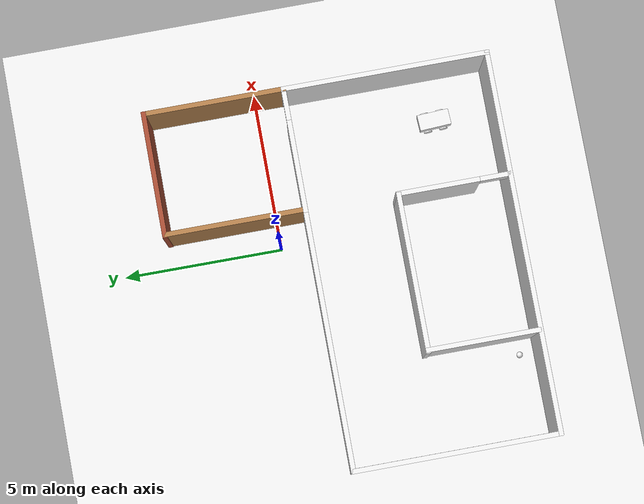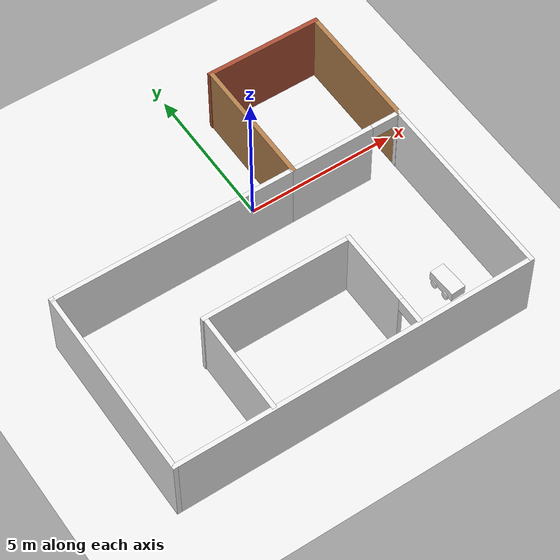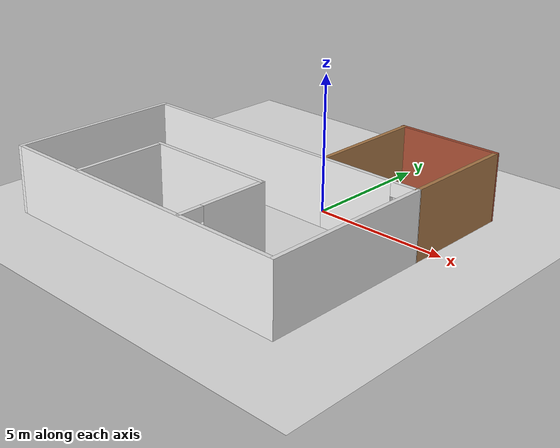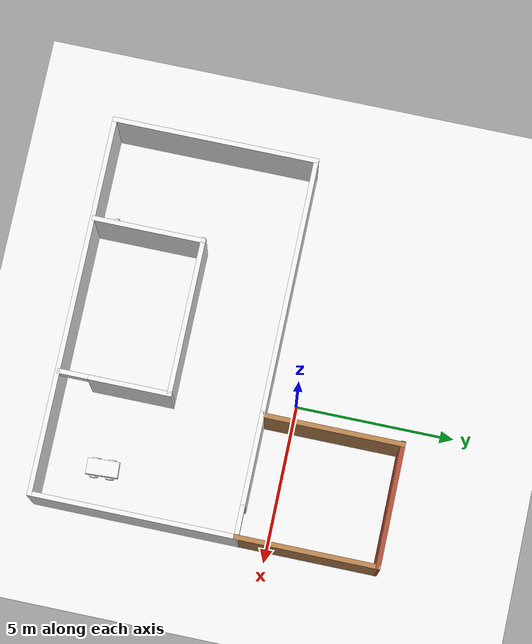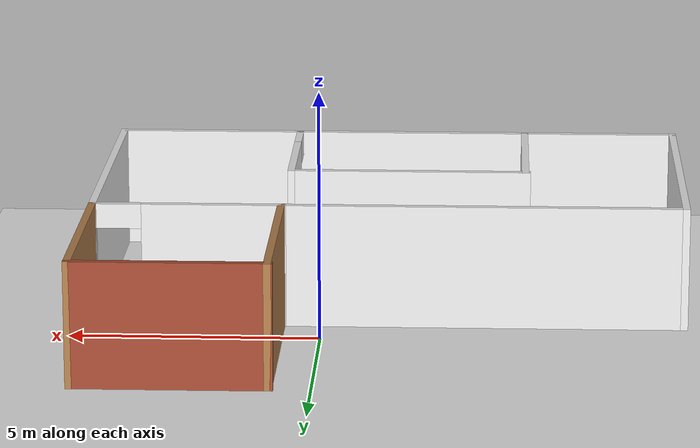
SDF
<sdf version="1.7">
 <world name="default">
  <model name="ground_plane">
   <static>1</static>
   <link name="link">
    <collision name="collision">
     <geometry><plane><normal>0 0 1</normal><size>100 100</size></plane></geometry>
     <surface><friction><ode><mu>100</mu><mu2>50</mu2></ode></friction></surface>
    </collision>
    <visual name="visual">
     <cast_shadows>0</cast_shadows>
     <geometry><plane><normal>0 0 1</normal><size>100 100</size></plane></geometry>
     <material>
      <script><uri>file://media/materials/scripts/gazebo.material</uri><name>Gazebo/White</name></script>
     </material>
    </visual>
   </link>
  </model>
  <model name="robot">
   <link name="link_0">
    <pose>0.144522 0.224076 0 0 -0 0</pose>
    <inertial>
     <mass>5</mass>
     <inertia>
      <ixx>0.166667</ixx>
      <ixy>0</ixy>
      <ixz>0</ixz>
      <iyy>0.166667</iyy>
      <iyz>0</iyz>
      <izz>0.166667</izz>
     </inertia>
    </inertial>
    <visual name="visual">
     <pose>0 0 0.15 0 -0 0</pose>
     <geometry><box><size>1 0.5 0.35</size></box></geometry>
     <material>
      <lighting>1</lighting>
      <script><uri>file://media/materials/scripts/gazebo.material</uri><name>Gazebo/White</name></script>
      <shader type="pixel"><normal_map>__default__</normal_map></shader>
      <ambient>0.3 0.3 0.3 1</ambient>
      <diffuse>0.7 0.7 0.7 1</diffuse>
      <specular>0.01 0.01 0.01 1</specular>
      <emissive>0 0 0 1</emissive>
     </material>
    </visual>
    <collision name="collision">
     <pose>0 0 0.15 0 -0 0</pose>
     <geometry><box><size>1 0.5 0.35</size></box></geometry>
     <surface>
      <friction>
       <ode><mu>1</mu><mu2>1</mu2><fdir1>0 0 0</fdir1><slip1>0</slip1><slip2>0</slip2></ode>
       <torsional>
        <coefficient>1</coefficient>
        <patch_radius>0</patch_radius>
        <surface_radius>0</surface_radius>
        <use_patch_radius>1</use_patch_radius>
        <ode><slip>0</slip></ode>
       </torsional>
      </friction>
      <bounce><restitution_coefficient>0</restitution_coefficient><threshold>1e+06</threshold></bounce>
      <contact>
       <collide_without_contact>0</collide_without_contact>
       <collide_without_contact_bitmask>1</collide_without_contact_bitmask>
       <collide_bitmask>1</collide_bitmask>
       <ode>
        <soft_cfm>0</soft_cfm>
        <soft_erp>0.2</soft_erp>
        <kp>1e+13</kp>
        <kd>1</kd>
        <max_vel>0.01</max_vel>
        <min_depth>0</min_depth>
       </ode>
       <bullet>
        <split_impulse>1</split_impulse>
        <split_impulse_penetration_threshold>-0.01</split_impulse_penetration_threshold>
        <soft_cfm>0</soft_cfm>
        <soft_erp>0.2</soft_erp>
        <kp>1e+13</kp>
        <kd>1</kd>
       </bullet>
      </contact>
     </surface>
    </collision>
   </link>
   <link name="link_1">
    <pose>-0.105478 -0.065924 0 1.5707 -0 0</pose>
    <inertial>
     <mass>1</mass>
     <inertia><ixx>0.145833</ixx><ixy>0</ixy><ixz>0</ixz><iyy>0.145833</iyy><iyz>0</iyz><izz>0.125</izz></inertia>
    </inertial>
    <visual name="visual">
     <geometry><cylinder><radius>0.13</radius><length>0.04</length></cylinder></geometry>
     <material>
      <lighting>1</lighting>
      <script><uri>file://media/materials/scripts/gazebo.material</uri><name>Gazebo/White</name></script>
      <shader type="pixel"><normal_map>__default__</normal_map></shader>
      <ambient>0.3 0.3 0.3 1</ambient>
      <diffuse>0.7 0.7 0.7 1</diffuse>
      <specular>0.01 0.01 0.01 1</specular>
      <emissive>0 0 0 1</emissive>
     </material>
    </visual>
    <collision name="collision">
     <geometry><cylinder><radius>0.13</radius><length>0.04</length></cylinder></geometry>
     <surface>
      <friction>
       <ode><mu>1</mu><mu2>1</mu2><fdir1>0 0 0</fdir1><slip1>0</slip1><slip2>0</slip2></ode>
       <torsional>
        <coefficient>1</coefficient>
        <patch_radius>0</patch_radius>
        <surface_radius>0</surface_radius>
        <use_patch_radius>1</use_patch_radius>
        <ode><slip>0</slip></ode>
       </torsional>
      </friction>
      <bounce><restitution_coefficient>0</restitution_coefficient><threshold>1e+06</threshold></bounce>
      <contact>
       <collide_without_contact>0</collide_without_contact>
       <collide_without_contact_bitmask>1</collide_without_contact_bitmask>
       <collide_bitmask>1</collide_bitmask>
       <ode>
        <soft_cfm>0</soft_cfm>
        <soft_erp>0.2</soft_erp>
        <kp>1e+13</kp>
        <kd>1</kd>
        <max_vel>0.01</max_vel>
        <min_depth>0</min_depth>
       </ode>
       <bullet>
        <split_impulse>1</split_impulse>
        <split_impulse_penetration_threshold>-0.01</split_impulse_penetration_threshold>
        <soft_cfm>0</soft_cfm>
        <soft_erp>0.2</soft_erp>
        <kp>1e+13</kp>
        <kd>1</kd>
       </bullet>
      </contact>
     </surface>
    </collision>
   </link>
   <link name="link_1_clone">
    <pose>0.394522 -0.065924 0 1.5707 -0 0</pose>
    <inertial>
     <mass>1</mass>
     <inertia><ixx>0.145833</ixx><ixy>0</ixy><ixz>0</ixz><iyy>0.145833</iyy><iyz>0</iyz><izz>0.125</izz></inertia>
    </inertial>
    <visual name="visual">
     <geometry><cylinder><radius>0.13</radius><length>0.04</length></cylinder></geometry>
     <material>
      <lighting>1</lighting>
      <script><uri>file://media/materials/scripts/gazebo.material</uri><name>Gazebo/White</name></script>
      <shader type="pixel"><normal_map>__default__</normal_map></shader>
      <ambient>0.3 0.3 0.3 1</ambient>
      <diffuse>0.7 0.7 0.7 1</diffuse>
      <specular>0.01 0.01 0.01 1</specular>
      <emissive>0 0 0 1</emissive>
     </material>
    </visual>
    <collision name="collision">
     <geometry><cylinder><radius>0.13</radius><length>0.04</length></cylinder></geometry>
     <surface>
      <friction>
       <ode><mu>1</mu><mu2>1</mu2><fdir1>0 0 0</fdir1><slip1>0</slip1><slip2>0</slip2></ode>
       <torsional>
        <coefficient>1</coefficient>
        <patch_radius>0</patch_radius>
        <surface_radius>0</surface_radius>
        <use_patch_radius>1</use_patch_radius>
        <ode><slip>0</slip></ode>
       </torsional>
      </friction>
      <bounce><restitution_coefficient>0</restitution_coefficient><threshold>1e+06</threshold></bounce>
      <contact>
       <collide_without_contact>0</collide_without_contact>
       <collide_without_contact_bitmask>1</collide_without_contact_bitmask>
       <collide_bitmask>1</collide_bitmask>
       <ode>
        <soft_cfm>0</soft_cfm>
        <soft_erp>0.2</soft_erp>
        <kp>1e+13</kp>
        <kd>1</kd>
        <max_vel>0.01</max_vel>
        <min_depth>0</min_depth>
       </ode>
       <bullet>
        <split_impulse>1</split_impulse>
        <split_impulse_penetration_threshold>-0.01</split_impulse_penetration_threshold>
        <soft_cfm>0</soft_cfm>
        <soft_erp>0.2</soft_erp>
        <kp>1e+13</kp>
        <kd>1</kd>
       </bullet>
      </contact>
     </surface>
    </collision>
   </link>
   <link name="link_1_clone_0">
    <pose>-0.105478 0.514076 0 1.5707 -0 0</pose>
    <inertial>
     <mass>1</mass>
     <inertia><ixx>0.145833</ixx><ixy>0</ixy><ixz>0</ixz><iyy>0.145833</iyy><iyz>0</iyz><izz>0.125</izz></inertia>
    </inertial>
    <visual name="visual">
     <geometry><cylinder><radius>0.13</radius><length>0.04</length></cylinder></geometry>
     <material>
      <lighting>1</lighting>
      <script><uri>file://media/materials/scripts/gazebo.material</uri><name>Gazebo/White</name></script>
      <shader type="pixel"><normal_map>__default__</normal_map></shader>
      <ambient>0.3 0.3 0.3 1</ambient>
      <diffuse>0.7 0.7 0.7 1</diffuse>
      <specular>0.01 0.01 0.01 1</specular>
      <emissive>0 0 0 1</emissive>
     </material>
    </visual>
    <collision name="collision">
     <geometry><cylinder><radius>0.13</radius><length>0.04</length></cylinder></geometry>
     <surface>
      <friction>
       <ode><mu>1</mu><mu2>1</mu2><fdir1>0 0 0</fdir1><slip1>0</slip1><slip2>0</slip2></ode>
       <torsional>
        <coefficient>1</coefficient>
        <patch_radius>0</patch_radius>
        <surface_radius>0</surface_radius>
        <use_patch_radius>1</use_patch_radius>
        <ode><slip>0</slip></ode>
       </torsional>
      </friction>
      <bounce><restitution_coefficient>0</restitution_coefficient><threshold>1e+06</threshold></bounce>
      <contact>
       <collide_without_contact>0</collide_without_contact>
       <collide_without_contact_bitmask>1</collide_without_contact_bitmask>
       <collide_bitmask>1</collide_bitmask>
       <ode>
        <soft_cfm>0</soft_cfm>
        <soft_erp>0.2</soft_erp>
        <kp>1e+13</kp>
        <kd>1</kd>
        <max_vel>0.01</max_vel>
        <min_depth>0</min_depth>
       </ode>
       <bullet>
        <split_impulse>1</split_impulse>
        <split_impulse_penetration_threshold>-0.01</split_impulse_penetration_threshold>
        <soft_cfm>0</soft_cfm>
        <soft_erp>0.2</soft_erp>
        <kp>1e+13</kp>
        <kd>1</kd>
       </bullet>
      </contact>
     </surface>
    </collision>
   </link>
   <link name="link_1_clone_1">
    <pose>0.394522 0.514076 0 1.5707 -0 0</pose>
    <inertial>
     <mass>1</mass>
     <inertia><ixx>0.145833</ixx><ixy>0</ixy><ixz>0</ixz><iyy>0.145833</iyy><iyz>0</iyz><izz>0.125</izz></inertia>
    </inertial>
    <visual name="visual">
     <geometry><cylinder><radius>0.13</radius><length>0.04</length></cylinder></geometry>
     <material>
      <lighting>1</lighting>
      <script><uri>file://media/materials/scripts/gazebo.material</uri><name>Gazebo/White</name></script>
      <shader type="pixel"><normal_map>__default__</normal_map></shader>
      <ambient>0.3 0.3 0.3 1</ambient>
      <diffuse>0.7 0.7 0.7 1</diffuse>
      <specular>0.01 0.01 0.01 1</specular>
      <emissive>0 0 0 1</emissive>
     </material>
    </visual>
    <collision name="collision">
     <geometry><cylinder><radius>0.13</radius><length>0.04</length></cylinder></geometry>
     <surface>
      <friction>
       <ode><mu>1</mu><mu2>1</mu2><fdir1>0 0 0</fdir1><slip1>0</slip1><slip2>0</slip2></ode>
       <torsional>
        <coefficient>1</coefficient>
        <patch_radius>0</patch_radius>
        <surface_radius>0</surface_radius>
        <use_patch_radius>1</use_patch_radius>
        <ode><slip>0</slip></ode>
       </torsional>
      </friction>
      <bounce><restitution_coefficient>0</restitution_coefficient><threshold>1e+06</threshold></bounce>
      <contact>
       <collide_without_contact>0</collide_without_contact>
       <collide_without_contact_bitmask>1</collide_without_contact_bitmask>
       <collide_bitmask>1</collide_bitmask>
       <ode>
        <soft_cfm>0</soft_cfm>
        <soft_erp>0.2</soft_erp>
        <kp>1e+13</kp>
        <kd>1</kd>
        <max_vel>0.01</max_vel>
        <min_depth>0</min_depth>
       </ode>
       <bullet>
        <split_impulse>1</split_impulse>
        <split_impulse_penetration_threshold>-0.01</split_impulse_penetration_threshold>
        <soft_cfm>0</soft_cfm>
        <soft_erp>0.2</soft_erp>
        <kp>1e+13</kp>
        <kd>1</kd>
       </bullet>
      </contact>
     </surface>
    </collision>
   </link>
   <joint name="link_0_JOINT_0" type="revolute">
    <parent>link_0</parent>
    <child>link_1</child>
    <pose>0 0 0 -0.01 0 0</pose>
    <axis>
     <xyz>0 0 1</xyz>
     <limit>
      <lower>-1.79769e+308</lower>
      <upper>1.79769e+308</upper>
      <effort>-1</effort>
      <velocity>-1</velocity>
     </limit>
     <dynamics>
      <spring_reference>0</spring_reference>
      <spring_stiffness>0</spring_stiffness>
      <damping>0</damping>
     </dynamics>
    </axis>
    <physics>
     <ode><limit><cfm>0</cfm><erp>0.2</erp></limit><suspension><cfm>0</cfm><erp>0.2</erp></suspension></ode>
    </physics>
   </joint>
   <joint name="link_0_JOINT_1" type="revolute">
    <parent>link_0</parent>
    <child>link_1_clone</child>
    <axis>
     <xyz>0 0 1</xyz>
     <limit>
      <lower>-1.79769e+308</lower>
      <upper>1.79769e+308</upper>
      <effort>-1</effort>
      <velocity>-1</velocity>
     </limit>
     <dynamics>
      <spring_reference>0</spring_reference>
      <spring_stiffness>0</spring_stiffness>
      <damping>0</damping>
     </dynamics>
    </axis>
    <physics>
     <ode><limit><cfm>0</cfm><erp>0.2</erp></limit><suspension><cfm>0</cfm><erp>0.2</erp></suspension></ode>
    </physics>
   </joint>
   <joint name="link_0_JOINT_2" type="revolute">
    <parent>link_0</parent>
    <child>link_1_clone_0</child>
    <axis>
     <xyz>0 0 1</xyz>
     <limit>
      <lower>-1.79769e+308</lower>
      <upper>1.79769e+308</upper>
      <effort>-1</effort>
      <velocity>-1</velocity>
     </limit>
     <dynamics>
      <spring_reference>0</spring_reference>
      <spring_stiffness>0</spring_stiffness>
      <damping>0</damping>
     </dynamics>
    </axis>
    <physics>
     <ode><limit><cfm>0</cfm><erp>0.2</erp></limit><suspension><cfm>0</cfm><erp>0.2</erp></suspension></ode>
    </physics>
   </joint>
   <joint name="link_0_JOINT_3" type="revolute">
    <parent>link_0</parent>
    <child>link_1_clone_1</child>
    <axis>
     <xyz>0 0 1</xyz>
     <limit>
      <lower>-1.79769e+308</lower>
      <upper>1.79769e+308</upper>
      <effort>-1</effort>
      <velocity>-1</velocity>
     </limit>
     <dynamics>
      <spring_reference>0</spring_reference>
      <spring_stiffness>0</spring_stiffness>
      <damping>0</damping>
     </dynamics>
    </axis>
    <physics>
     <ode><limit><cfm>0</cfm><erp>0.2</erp></limit><suspension><cfm>0</cfm><erp>0.2</erp></suspension></ode>
    </physics>
   </joint>
   <static>0</static>
   <pose>3.40042 -5.61266 0.129998 7e-06 -0 1.62395</pose>
  </model>
  <model name="my_ball">
   <link name="link_0">
    <inertial>
     <mass>1</mass>
     <inertia><ixx>0.1</ixx><ixy>0</ixy><ixz>0</ixz><iyy>0.1</iyy><iyz>0</iyz><izz>0.1</izz></inertia>
    </inertial>
    <visual name="visual">
     <geometry><sphere><radius>0.1</radius></sphere></geometry>
     <material>
      <lighting>1</lighting>
      <script><uri>file://media/materials/scripts/gazebo.material</uri><name>Gazebo/White</name></script>
      <shader type="pixel"><normal_map>__default__</normal_map></shader>
      <ambient>1 1 1 1</ambient>
      <diffuse>1 1 1 1</diffuse>
      <specular>1 1 1 1</specular>
      <emissive>1 1 1 1</emissive>
     </material>
    </visual>
    <collision name="collision">
     <geometry><sphere><radius>0.1</radius></sphere></geometry>
     <surface>
      <friction>
       <ode><mu>1</mu><mu2>1</mu2><fdir1>0 0 0</fdir1><slip1>0</slip1><slip2>0</slip2></ode>
       <torsional>
        <coefficient>1</coefficient>
        <patch_radius>0</patch_radius>
        <surface_radius>0</surface_radius>
        <use_patch_radius>1</use_patch_radius>
        <ode><slip>0</slip></ode>
       </torsional>
      </friction>
      <bounce><restitution_coefficient>0</restitution_coefficient><threshold>1e+06</threshold></bounce>
      <contact>
       <collide_without_contact>0</collide_without_contact>
       <collide_without_contact_bitmask>1</collide_without_contact_bitmask>
       <collide_bitmask>1</collide_bitmask>
       <ode>
        <soft_cfm>0</soft_cfm>
        <soft_erp>0.2</soft_erp>
        <kp>1e+13</kp>
        <kd>1</kd>
        <max_vel>0.01</max_vel>
        <min_depth>0</min_depth>
       </ode>
       <bullet>
        <split_impulse>1</split_impulse>
        <split_impulse_penetration_threshold>-0.01</split_impulse_penetration_threshold>
        <soft_cfm>0</soft_cfm>
        <soft_erp>0.2</soft_erp>
        <kp>1e+13</kp>
        <kd>1</kd>
       </bullet>
      </contact>
     </surface>
    </collision>
   </link>
   <static>0</static>
   <pose>-4.61742 -6.7625 0.1 0 -0 0</pose>
  </model>
  <model name="color_house">
   <link name="Wall_0">
    <pose>5.92489 -2.17543 0 0 -0 1.5709</pose>
    <inertial>
     <mass>1</mass>
     <inertia><ixx>1</ixx><ixy>0</ixy><ixz>0</ixz><iyy>1</iyy><iyz>0</iyz><izz>1</izz></inertia>
    </inertial>
    <visual name="Wall_0_Visual">
     <pose>0 0 1.25 0 -0 0</pose>
     <geometry><box><size>6.5 0.15 2.5</size></box></geometry>
     <material>
      <script><uri>file://media/materials/scripts/gazebo.material</uri><name>Gazebo/White</name></script>
      <ambient>0.435 0 0 1</ambient>
      <shader type="pixel"><normal_map>__default__</normal_map></shader>
      <diffuse>1 1 1 1</diffuse>
      <specular>0 0 0 1</specular>
      <emissive>0 0 0 1</emissive>
     </material>
     <meta><layer>0</layer></meta>
    </visual>
    <collision name="Wall_0_Collision">
     <pose>0 0 1.25 0 -0 0</pose>
     <geometry><box><size>6.5 0.15 2.5</size></box></geometry>
     <surface>
      <friction>
       <ode><mu>1</mu><mu2>1</mu2><fdir1>0 0 0</fdir1><slip1>0</slip1><slip2>0</slip2></ode>
       <torsional>
        <coefficient>1</coefficient>
        <patch_radius>0</patch_radius>
        <surface_radius>0</surface_radius>
        <use_patch_radius>1</use_patch_radius>
        <ode><slip>0</slip></ode>
       </torsional>
      </friction>
      <bounce><restitution_coefficient>0</restitution_coefficient><threshold>1e+06</threshold></bounce>
      <contact>
       <collide_without_contact>0</collide_without_contact>
       <collide_without_contact_bitmask>1</collide_without_contact_bitmask>
       <collide_bitmask>1</collide_bitmask>
       <ode>
        <soft_cfm>0</soft_cfm>
        <soft_erp>0.2</soft_erp>
        <kp>1e+13</kp>
        <kd>1</kd>
        <max_vel>0.01</max_vel>
        <min_depth>0</min_depth>
       </ode>
       <bullet>
        <split_impulse>1</split_impulse>
        <split_impulse_penetration_threshold>-0.01</split_impulse_penetration_threshold>
        <soft_cfm>0</soft_cfm>
        <soft_erp>0.2</soft_erp>
        <kp>1e+13</kp>
        <kd>1</kd>
       </bullet>
      </contact>
     </surface>
    </collision>
   </link>
   <link name="Wall_11">
    <pose>-5.92524 -2.1751 0 0 -0 1.5708</pose>
    <visual name="Wall_11_Visual">
     <pose>0 0 1.25 0 -0 0</pose>
     <geometry><box><size>6.5 0.15 2.5</size></box></geometry>
     <material>
      <script><uri>file://media/materials/scripts/gazebo.material</uri><name>Gazebo/White</name></script>
      <ambient>0.435294 0.796078 0.67451 1</ambient>
      <shader type="pixel"/>
      <diffuse>1 1 1 1</diffuse>
      <specular>0 0 0 1</specular>
      <emissive>0 0 0 1</emissive>
     </material>
     <meta><layer>0</layer></meta>
    </visual>
    <collision name="Wall_11_Collision">
     <pose>0 0 1.25 0 -0 0</pose>
     <geometry><box><size>6.5 0.15 2.5</size></box></geometry>
     <surface>
      <friction>
       <ode><mu>1</mu><mu2>1</mu2><fdir1>0 0 0</fdir1><slip1>0</slip1><slip2>0</slip2></ode>
       <torsional>
        <coefficient>1</coefficient>
        <patch_radius>0</patch_radius>
        <surface_radius>0</surface_radius>
        <use_patch_radius>1</use_patch_radius>
        <ode><slip>0</slip></ode>
       </torsional>
      </friction>
      <bounce><restitution_coefficient>0</restitution_coefficient><threshold>1e+06</threshold></bounce>
      <contact>
       <collide_without_contact>0</collide_without_contact>
       <collide_without_contact_bitmask>1</collide_without_contact_bitmask>
       <collide_bitmask>1</collide_bitmask>
       <ode>
        <soft_cfm>0</soft_cfm>
        <soft_erp>0.2</soft_erp>
        <kp>1e+13</kp>
        <kd>1</kd>
        <max_vel>0.01</max_vel>
        <min_depth>0</min_depth>
       </ode>
       <bullet>
        <split_impulse>1</split_impulse>
        <split_impulse_penetration_threshold>-0.01</split_impulse_penetration_threshold>
        <soft_cfm>0</soft_cfm>
        <soft_erp>0.2</soft_erp>
        <kp>1e+13</kp>
        <kd>1</kd>
       </bullet>
      </contact>
     </surface>
    </collision>
   </link>
   <link name="Wall_13">
    <pose>-1.90198 1.00016 0 0 -0 6.6e-05</pose>
    <inertial>
     <mass>1</mass>
     <inertia><ixx>1</ixx><ixy>0</ixy><ixz>0</ixz><iyy>1</iyy><iyz>0</iyz><izz>1</izz></inertia>
    </inertial>
    <visual name="ModelPreview_1::Wall_13::visual_1">
     <pose>0 0 1.25 0 -0 0</pose>
     <geometry><box><size>8.19652 0.15 2.5</size></box></geometry>
     <material>
      <script><uri>file://media/materials/scripts/gazebo.material</uri><name>Gazebo/White</name></script>
      <ambient>1 1 1 1</ambient>
      <shader type="pixel"><normal_map>__default__</normal_map></shader>
      <diffuse>1 1 1 1</diffuse>
      <specular>0 0 0 1</specular>
      <emissive>0 0 0 1</emissive>
     </material>
     <meta><layer>0</layer></meta>
    </visual>
    <visual name="Wall_13_Visual">
     <pose>0 0 1.25 0 -0 0</pose>
     <geometry><box><size>8.19652 0.15 2.5</size></box></geometry>
     <material>
      <script><uri>file://media/materials/scripts/gazebo.material</uri><name>Gazebo/White</name></script>
      <ambient>1 1 1 1</ambient>
      <shader type="pixel"><normal_map>__default__</normal_map></shader>
      <diffuse>1 1 1 1</diffuse>
      <specular>0 0 0 1</specular>
      <emissive>0 0 0 1</emissive>
     </material>
     <meta><layer>0</layer></meta>
    </visual>
    <collision name="Wall_13_Collision">
     <pose>0 0 1.25 0 -0 0</pose>
     <geometry><box><size>8.19652 0.15 2.5</size></box></geometry>
     <surface>
      <friction>
       <ode><mu>1</mu><mu2>1</mu2><fdir1>0 0 0</fdir1><slip1>0</slip1><slip2>0</slip2></ode>
       <torsional>
        <coefficient>1</coefficient>
        <patch_radius>0</patch_radius>
        <surface_radius>0</surface_radius>
        <use_patch_radius>1</use_patch_radius>
        <ode><slip>0</slip></ode>
       </torsional>
      </friction>
      <bounce><restitution_coefficient>0</restitution_coefficient><threshold>1e+06</threshold></bounce>
      <contact>
       <collide_without_contact>0</collide_without_contact>
       <collide_without_contact_bitmask>1</collide_without_contact_bitmask>
       <collide_bitmask>1</collide_bitmask>
       <ode>
        <soft_cfm>0</soft_cfm>
        <soft_erp>0.2</soft_erp>
        <kp>1e+13</kp>
        <kd>1</kd>
        <max_vel>0.01</max_vel>
        <min_depth>0</min_depth>
       </ode>
       <bullet>
        <split_impulse>1</split_impulse>
        <split_impulse_penetration_threshold>-0.01</split_impulse_penetration_threshold>
        <soft_cfm>0</soft_cfm>
        <soft_erp>0.2</soft_erp>
        <kp>1e+13</kp>
        <kd>1</kd>
       </bullet>
      </contact>
     </surface>
    </collision>
   </link>
   <link name="Wall_15">
    <pose>2.14455 3.17543 0 0 -0 1.5708</pose>
    <visual name="Wall_15_Visual">
     <pose>0 0 1.25 0 -0 0</pose>
     <geometry><box><size>4.5 0.15 2.5</size></box></geometry>
     <material>
      <script><uri>file://media/materials/scripts/gazebo.material</uri><name>Gazebo/Wood</name></script>
      <ambient>1 1 1 1</ambient>
      <shader type="pixel"/>
      <diffuse>1 1 1 1</diffuse>
      <specular>0.2 0.2 0.2 1</specular>
      <emissive>0 0 0 1</emissive>
     </material>
     <meta><layer>0</layer></meta>
    </visual>
    <collision name="Wall_15_Collision">
     <pose>0 0 1.25 0 -0 0</pose>
     <geometry><box><size>4.5 0.15 2.5</size></box></geometry>
     <surface>
      <friction>
       <ode><mu>1</mu><mu2>1</mu2><fdir1>0 0 0</fdir1><slip1>0</slip1><slip2>0</slip2></ode>
       <torsional>
        <coefficient>1</coefficient>
        <patch_radius>0</patch_radius>
        <surface_radius>0</surface_radius>
        <use_patch_radius>1</use_patch_radius>
        <ode><slip>0</slip></ode>
       </torsional>
      </friction>
      <bounce><restitution_coefficient>0</restitution_coefficient><threshold>1e+06</threshold></bounce>
      <contact>
       <collide_without_contact>0</collide_without_contact>
       <collide_without_contact_bitmask>1</collide_without_contact_bitmask>
       <collide_bitmask>1</collide_bitmask>
       <ode>
        <soft_cfm>0</soft_cfm>
        <soft_erp>0.2</soft_erp>
        <kp>1e+13</kp>
        <kd>1</kd>
        <max_vel>0.01</max_vel>
        <min_depth>0</min_depth>
       </ode>
       <bullet>
        <split_impulse>1</split_impulse>
        <split_impulse_penetration_threshold>-0.01</split_impulse_penetration_threshold>
        <soft_cfm>0</soft_cfm>
        <soft_erp>0.2</soft_erp>
        <kp>1e+13</kp>
        <kd>1</kd>
       </bullet>
      </contact>
     </surface>
    </collision>
   </link>
   <link name="Wall_17">
    <pose>4.02292 5.34999 0 0 0 -0.000226</pose>
    <visual name="Wall_17_Visual">
     <pose>0 0 1.25 0 -0 0</pose>
     <geometry><box><size>3.95326 0.15 2.5</size></box></geometry>
     <material>
      <script><uri>file://media/materials/scripts/gazebo.material</uri><name>Gazebo/Bricks</name></script>
      <ambient>1 1 1 1</ambient>
      <shader type="pixel"/>
      <diffuse>1 1 1 1</diffuse>
      <specular>0.2 0.2 0.2 1</specular>
      <emissive>0 0 0 1</emissive>
     </material>
     <meta><layer>0</layer></meta>
    </visual>
    <collision name="Wall_17_Collision">
     <pose>0 0 1.25 0 -0 0</pose>
     <geometry><box><size>3.95326 0.15 2.5</size></box></geometry>
     <surface>
      <friction>
       <ode><mu>1</mu><mu2>1</mu2><fdir1>0 0 0</fdir1><slip1>0</slip1><slip2>0</slip2></ode>
       <torsional>
        <coefficient>1</coefficient>
        <patch_radius>0</patch_radius>
        <surface_radius>0</surface_radius>
        <use_patch_radius>1</use_patch_radius>
        <ode><slip>0</slip></ode>
       </torsional>
      </friction>
      <bounce><restitution_coefficient>0</restitution_coefficient><threshold>1e+06</threshold></bounce>
      <contact>
       <collide_without_contact>0</collide_without_contact>
       <collide_without_contact_bitmask>1</collide_without_contact_bitmask>
       <collide_bitmask>1</collide_bitmask>
       <ode>
        <soft_cfm>0</soft_cfm>
        <soft_erp>0.2</soft_erp>
        <kp>1e+13</kp>
        <kd>1</kd>
        <max_vel>0.01</max_vel>
        <min_depth>0</min_depth>
       </ode>
       <bullet>
        <split_impulse>1</split_impulse>
        <split_impulse_penetration_threshold>-0.01</split_impulse_penetration_threshold>
        <soft_cfm>0</soft_cfm>
        <soft_erp>0.2</soft_erp>
        <kp>1e+13</kp>
        <kd>1</kd>
       </bullet>
      </contact>
     </surface>
    </collision>
   </link>
   <link name="Wall_18">
    <pose>5.92454 3.17457 0 0 0 -1.5708</pose>
    <inertial>
     <mass>1</mass>
     <inertia><ixx>1</ixx><ixy>0</ixy><ixz>0</ixz><iyy>1</iyy><iyz>0</iyz><izz>1</izz></inertia>
    </inertial>
    <visual name="Wall_18_Visual">
     <pose>0 0 1.25 0 -0 0</pose>
     <geometry><box><size>4.5 0.15 2.5</size></box></geometry>
     <material>
      <script><uri>file://media/materials/scripts/gazebo.material</uri><name>Gazebo/Wood</name></script>
      <ambient>0 1 0 0</ambient>
      <shader type="pixel"><normal_map>__default__</normal_map></shader>
      <diffuse>1 1 1 1</diffuse>
      <specular>0.2 0.2 0.2 1</specular>
      <emissive>0 0 0 1</emissive>
     </material>
     <meta><layer>0</layer></meta>
    </visual>
    <collision name="Wall_18_Collision">
     <pose>0 0 1.25 0 -0 0</pose>
     <geometry><box><size>4.5 0.15 2.5</size></box></geometry>
     <surface>
      <friction>
       <ode><mu>1</mu><mu2>1</mu2><fdir1>0 0 0</fdir1><slip1>0</slip1><slip2>0</slip2></ode>
       <torsional>
        <coefficient>1</coefficient>
        <patch_radius>0</patch_radius>
        <surface_radius>0</surface_radius>
        <use_patch_radius>1</use_patch_radius>
        <ode><slip>0</slip></ode>
       </torsional>
      </friction>
      <bounce><restitution_coefficient>0</restitution_coefficient><threshold>1e+06</threshold></bounce>
      <contact>
       <collide_without_contact>0</collide_without_contact>
       <collide_without_contact_bitmask>1</collide_without_contact_bitmask>
       <collide_bitmask>1</collide_bitmask>
       <ode>
        <soft_cfm>0</soft_cfm>
        <soft_erp>0.2</soft_erp>
        <kp>1e+13</kp>
        <kd>1</kd>
        <max_vel>0.01</max_vel>
        <min_depth>0</min_depth>
       </ode>
       <bullet>
        <split_impulse>1</split_impulse>
        <split_impulse_penetration_threshold>-0.01</split_impulse_penetration_threshold>
        <soft_cfm>0</soft_cfm>
        <soft_erp>0.2</soft_erp>
        <kp>1e+13</kp>
        <kd>1</kd>
       </bullet>
      </contact>
     </surface>
    </collision>
   </link>
   <link name="Wall_2">
    <pose>4.02292 0.999996 0 0 -0 3.14137</pose>
    <inertial>
     <mass>1</mass>
     <inertia><ixx>1</ixx><ixy>0</ixy><ixz>0</ixz><iyy>1</iyy><iyz>0</iyz><izz>1</izz></inertia>
    </inertial>
    <visual name="Wall_2_Visual_0">
     <pose>-1.89775 0 1.25 0 -0 0</pose>
     <geometry><box><size>0.157756 0.15 2.5</size></box></geometry>
     <material>
      <script><uri>file://media/materials/scripts/gazebo.material</uri><name>Gazebo/White</name></script>
      <ambient>1 1 1 1</ambient>
      <shader type="pixel"><normal_map>__default__</normal_map></shader>
      <diffuse>1 1 1 1</diffuse>
      <specular>0 0 0 1</specular>
      <emissive>0 0 0 1</emissive>
     </material>
     <meta><layer>0</layer></meta>
    </visual>
    <visual name="Wall_2_Visual_1">
     <pose>0.528878 0 1.25 0 -0 0</pose>
     <geometry><box><size>2.8955 0.15 2.5</size></box></geometry>
     <material>
      <script><uri>file://media/materials/scripts/gazebo.material</uri><name>Gazebo/White</name></script>
      <ambient>1 1 1 1</ambient>
      <shader type="pixel"><normal_map>__default__</normal_map></shader>
      <diffuse>1 1 1 1</diffuse>
      <specular>0 0 0 1</specular>
      <emissive>0 0 0 1</emissive>
     </material>
     <meta><layer>0</layer></meta>
    </visual>
    <visual name="Wall_2_Visual_2">
     <pose>-1.36887 0 2.25 0 -0 0</pose>
     <geometry><box><size>0.9 0.15 0.5</size></box></geometry>
     <material>
      <script><uri>file://media/materials/scripts/gazebo.material</uri><name>Gazebo/White</name></script>
      <ambient>1 1 1 1</ambient>
      <shader type="pixel"><normal_map>__default__</normal_map></shader>
      <diffuse>1 1 1 1</diffuse>
      <specular>0 0 0 1</specular>
      <emissive>0 0 0 1</emissive>
     </material>
     <meta><layer>0</layer></meta>
    </visual>
    <collision name="Wall_2_Collision_0">
     <pose>-1.89775 0 1.25 0 -0 0</pose>
     <geometry><box><size>0.157756 0.15 2.5</size></box></geometry>
     <surface>
      <friction>
       <ode><mu>1</mu><mu2>1</mu2><fdir1>0 0 0</fdir1><slip1>0</slip1><slip2>0</slip2></ode>
       <torsional>
        <coefficient>1</coefficient>
        <patch_radius>0</patch_radius>
        <surface_radius>0</surface_radius>
        <use_patch_radius>1</use_patch_radius>
        <ode><slip>0</slip></ode>
       </torsional>
      </friction>
      <bounce><restitution_coefficient>0</restitution_coefficient><threshold>1e+06</threshold></bounce>
      <contact>
       <collide_without_contact>0</collide_without_contact>
       <collide_without_contact_bitmask>1</collide_without_contact_bitmask>
       <collide_bitmask>1</collide_bitmask>
       <ode>
        <soft_cfm>0</soft_cfm>
        <soft_erp>0.2</soft_erp>
        <kp>1e+13</kp>
        <kd>1</kd>
        <max_vel>0.01</max_vel>
        <min_depth>0</min_depth>
       </ode>
       <bullet>
        <split_impulse>1</split_impulse>
        <split_impulse_penetration_threshold>-0.01</split_impulse_penetration_threshold>
        <soft_cfm>0</soft_cfm>
        <soft_erp>0.2</soft_erp>
        <kp>1e+13</kp>
        <kd>1</kd>
       </bullet>
      </contact>
     </surface>
    </collision>
    <collision name="Wall_2_Collision_1">
     <pose>0.528878 0 1.25 0 -0 0</pose>
     <geometry><box><size>2.8955 0.15 2.5</size></box></geometry>
     <surface>
      <friction>
       <ode><mu>1</mu><mu2>1</mu2><fdir1>0 0 0</fdir1><slip1>0</slip1><slip2>0</slip2></ode>
       <torsional>
        <coefficient>1</coefficient>
        <patch_radius>0</patch_radius>
        <surface_radius>0</surface_radius>
        <use_patch_radius>1</use_patch_radius>
        <ode><slip>0</slip></ode>
       </torsional>
      </friction>
      <bounce><restitution_coefficient>0</restitution_coefficient><threshold>1e+06</threshold></bounce>
      <contact>
       <collide_without_contact>0</collide_without_contact>
       <collide_without_contact_bitmask>1</collide_without_contact_bitmask>
       <collide_bitmask>1</collide_bitmask>
       <ode>
        <soft_cfm>0</soft_cfm>
        <soft_erp>0.2</soft_erp>
        <kp>1e+13</kp>
        <kd>1</kd>
        <max_vel>0.01</max_vel>
        <min_depth>0</min_depth>
       </ode>
       <bullet>
        <split_impulse>1</split_impulse>
        <split_impulse_penetration_threshold>-0.01</split_impulse_penetration_threshold>
        <soft_cfm>0</soft_cfm>
        <soft_erp>0.2</soft_erp>
        <kp>1e+13</kp>
        <kd>1</kd>
       </bullet>
      </contact>
     </surface>
    </collision>
    <collision name="Wall_2_Collision_2">
     <pose>-1.36887 0 2.25 0 -0 0</pose>
     <geometry><box><size>0.9 0.15 0.5</size></box></geometry>
     <surface>
      <friction>
       <ode><mu>1</mu><mu2>1</mu2><fdir1>0 0 0</fdir1><slip1>0</slip1><slip2>0</slip2></ode>
       <torsional>
        <coefficient>1</coefficient>
        <patch_radius>0</patch_radius>
        <surface_radius>0</surface_radius>
        <use_patch_radius>1</use_patch_radius>
        <ode><slip>0</slip></ode>
       </torsional>
      </friction>
      <bounce><restitution_coefficient>0</restitution_coefficient><threshold>1e+06</threshold></bounce>
      <contact>
       <collide_without_contact>0</collide_without_contact>
       <collide_without_contact_bitmask>1</collide_without_contact_bitmask>
       <collide_bitmask>1</collide_bitmask>
       <ode>
        <soft_cfm>0</soft_cfm>
        <soft_erp>0.2</soft_erp>
        <kp>1e+13</kp>
        <kd>1</kd>
        <max_vel>0.01</max_vel>
        <min_depth>0</min_depth>
       </ode>
       <bullet>
        <split_impulse>1</split_impulse>
        <split_impulse_penetration_threshold>-0.01</split_impulse_penetration_threshold>
        <soft_cfm>0</soft_cfm>
        <soft_erp>0.2</soft_erp>
        <kp>1e+13</kp>
        <kd>1</kd>
       </bullet>
      </contact>
     </surface>
    </collision>
   </link>
   <link name="Wall_21">
    <pose>-0.349648 -1.88143 0 0 -0 3.14159</pose>
    <inertial>
     <mass>1</mass>
     <inertia><ixx>1</ixx><ixy>0</ixy><ixz>0</ixz><iyy>1</iyy><iyz>0</iyz><izz>1</izz></inertia>
    </inertial>
    <visual name="Wall_21_Visual">
     <pose>0 0 1.25 0 -0 0</pose>
     <geometry><box><size>5 0.15 2.5</size></box></geometry>
     <material>
      <script><uri>file://media/materials/scripts/gazebo.material</uri><name>Gazebo/White</name></script>
      <ambient>0 0 0.675 1</ambient>
      <shader type="pixel"><normal_map>__default__</normal_map></shader>
      <diffuse>1 1 1 1</diffuse>
      <specular>0 0 0 1</specular>
      <emissive>0 0 0 1</emissive>
     </material>
     <meta><layer>0</layer></meta>
    </visual>
    <collision name="Wall_21_Collision">
     <pose>0 0 1.25 0 -0 0</pose>
     <geometry><box><size>5 0.15 2.5</size></box></geometry>
     <surface>
      <friction>
       <ode><mu>1</mu><mu2>1</mu2><fdir1>0 0 0</fdir1><slip1>0</slip1><slip2>0</slip2></ode>
       <torsional>
        <coefficient>1</coefficient>
        <patch_radius>0</patch_radius>
        <surface_radius>0</surface_radius>
        <use_patch_radius>1</use_patch_radius>
        <ode><slip>0</slip></ode>
       </torsional>
      </friction>
      <bounce><restitution_coefficient>0</restitution_coefficient><threshold>1e+06</threshold></bounce>
      <contact>
       <collide_without_contact>0</collide_without_contact>
       <collide_without_contact_bitmask>1</collide_without_contact_bitmask>
       <collide_bitmask>1</collide_bitmask>
       <ode>
        <soft_cfm>0</soft_cfm>
        <soft_erp>0.2</soft_erp>
        <kp>1e+13</kp>
        <kd>1</kd>
        <max_vel>0.01</max_vel>
        <min_depth>0</min_depth>
       </ode>
       <bullet>
        <split_impulse>1</split_impulse>
        <split_impulse_penetration_threshold>-0.01</split_impulse_penetration_threshold>
        <soft_cfm>0</soft_cfm>
        <soft_erp>0.2</soft_erp>
        <kp>1e+13</kp>
        <kd>1</kd>
       </bullet>
      </contact>
     </surface>
    </collision>
   </link>
   <link name="Wall_22">
    <pose>-2.74448 -3.58441 0 0 0 -1.5708</pose>
    <visual name="Wall_22_Visual">
     <pose>0 0 1.25 0 -0 0</pose>
     <geometry><box><size>3.55596 0.15 2.5</size></box></geometry>
     <material>
      <script><uri>file://media/materials/scripts/gazebo.material</uri><name>Gazebo/White</name></script>
      <ambient>0.435294 0.796078 0.67451 1</ambient>
      <shader type="pixel"/>
      <diffuse>1 1 1 1</diffuse>
      <specular>0 0 0 1</specular>
      <emissive>0 0 0 1</emissive>
     </material>
     <meta><layer>0</layer></meta>
    </visual>
    <collision name="Wall_22_Collision">
     <pose>0 0 1.25 0 -0 0</pose>
     <geometry><box><size>3.55596 0.15 2.5</size></box></geometry>
     <surface>
      <friction>
       <ode><mu>1</mu><mu2>1</mu2><fdir1>0 0 0</fdir1><slip1>0</slip1><slip2>0</slip2></ode>
       <torsional>
        <coefficient>1</coefficient>
        <patch_radius>0</patch_radius>
        <surface_radius>0</surface_radius>
        <use_patch_radius>1</use_patch_radius>
        <ode><slip>0</slip></ode>
       </torsional>
      </friction>
      <bounce><restitution_coefficient>0</restitution_coefficient><threshold>1e+06</threshold></bounce>
      <contact>
       <collide_without_contact>0</collide_without_contact>
       <collide_without_contact_bitmask>1</collide_without_contact_bitmask>
       <collide_bitmask>1</collide_bitmask>
       <ode>
        <soft_cfm>0</soft_cfm>
        <soft_erp>0.2</soft_erp>
        <kp>1e+13</kp>
        <kd>1</kd>
        <max_vel>0.01</max_vel>
        <min_depth>0</min_depth>
       </ode>
       <bullet>
        <split_impulse>1</split_impulse>
        <split_impulse_penetration_threshold>-0.01</split_impulse_penetration_threshold>
        <soft_cfm>0</soft_cfm>
        <soft_erp>0.2</soft_erp>
        <kp>1e+13</kp>
        <kd>1</kd>
       </bullet>
      </contact>
     </surface>
    </collision>
   </link>
   <link name="Wall_4">
    <pose>-2e-06 -5.35027 0 0 -0 3.14156</pose>
    <inertial>
     <mass>1</mass>
     <inertia><ixx>1</ixx><ixy>0</ixy><ixz>0</ixz><iyy>1</iyy><iyz>0</iyz><izz>1</izz></inertia>
    </inertial>
    <visual name="Wall_4_Visual">
     <pose>0 0 1.25 0 -0 0</pose>
     <geometry><box><size>12 0.15 2.5</size></box></geometry>
     <material>
      <script><uri>file://media/materials/scripts/gazebo.material</uri><name>Gazebo/White</name></script>
      <ambient>1 1 1 1</ambient>
      <shader type="pixel"><normal_map>__default__</normal_map></shader>
      <diffuse>0 0 0 1</diffuse>
      <specular>0 0 0 1</specular>
      <emissive>0 0 0 1</emissive>
     </material>
     <meta><layer>0</layer></meta>
    </visual>
    <collision name="Wall_4_Collision">
     <pose>0 0 1.25 0 -0 0</pose>
     <geometry><box><size>12 0.15 2.5</size></box></geometry>
     <surface>
      <friction>
       <ode><mu>1</mu><mu2>1</mu2><fdir1>0 0 0</fdir1><slip1>0</slip1><slip2>0</slip2></ode>
       <torsional>
        <coefficient>1</coefficient>
        <patch_radius>0</patch_radius>
        <surface_radius>0</surface_radius>
        <use_patch_radius>1</use_patch_radius>
        <ode><slip>0</slip></ode>
       </torsional>
      </friction>
      <bounce><restitution_coefficient>0</restitution_coefficient><threshold>1e+06</threshold></bounce>
      <contact>
       <collide_without_contact>0</collide_without_contact>
       <collide_without_contact_bitmask>1</collide_without_contact_bitmask>
       <collide_bitmask>1</collide_bitmask>
       <ode>
        <soft_cfm>0</soft_cfm>
        <soft_erp>0.2</soft_erp>
        <kp>1e+13</kp>
        <kd>1</kd>
        <max_vel>0.01</max_vel>
        <min_depth>0</min_depth>
       </ode>
       <bullet>
        <split_impulse>1</split_impulse>
        <split_impulse_penetration_threshold>-0.01</split_impulse_penetration_threshold>
        <soft_cfm>0</soft_cfm>
        <soft_erp>0.2</soft_erp>
        <kp>1e+13</kp>
        <kd>1</kd>
       </bullet>
      </contact>
     </surface>
    </collision>
   </link>
   <link name="Wall_9">
    <pose>2.10552 -3.58441 0 0 -0 1.5708</pose>
    <visual name="Wall_9_Visual_0">
     <pose>-1.74984 0 1.25 0 -0 0</pose>
     <geometry><box><size>0.056285 0.15 2.5</size></box></geometry>
     <material>
      <script><uri>file://media/materials/scripts/gazebo.material</uri><name>Gazebo/White</name></script>
      <ambient>0.435294 0.796078 0.67451 1</ambient>
      <shader type="pixel"/>
      <diffuse>1 1 1 1</diffuse>
      <specular>0 0 0 1</specular>
      <emissive>0 0 0 1</emissive>
     </material>
     <meta><layer>0</layer></meta>
    </visual>
    <visual name="Wall_9_Visual_1">
     <pose>0.478143 0 1.25 0 -0 0</pose>
     <geometry><box><size>2.59968 0.15 2.5</size></box></geometry>
     <material>
      <script><uri>file://media/materials/scripts/gazebo.material</uri><name>Gazebo/White</name></script>
      <ambient>0.435294 0.796078 0.67451 1</ambient>
      <shader type="pixel"/>
      <diffuse>1 1 1 1</diffuse>
      <specular>0 0 0 1</specular>
      <emissive>0 0 0 1</emissive>
     </material>
     <meta><layer>0</layer></meta>
    </visual>
    <visual name="Wall_9_Visual_2">
     <pose>-1.2717 0 2.25 0 -0 0</pose>
     <geometry><box><size>0.9 0.15 0.5</size></box></geometry>
     <material>
      <script><uri>file://media/materials/scripts/gazebo.material</uri><name>Gazebo/White</name></script>
      <ambient>0.435294 0.796078 0.67451 1</ambient>
      <shader type="pixel"/>
      <diffuse>1 1 1 1</diffuse>
      <specular>0 0 0 1</specular>
      <emissive>0 0 0 1</emissive>
     </material>
     <meta><layer>0</layer></meta>
    </visual>
    <collision name="Wall_9_Collision_0">
     <pose>-1.74984 0 1.25 0 -0 0</pose>
     <geometry><box><size>0.056285 0.15 2.5</size></box></geometry>
     <surface>
      <friction>
       <ode><mu>1</mu><mu2>1</mu2><fdir1>0 0 0</fdir1><slip1>0</slip1><slip2>0</slip2></ode>
       <torsional>
        <coefficient>1</coefficient>
        <patch_radius>0</patch_radius>
        <surface_radius>0</surface_radius>
        <use_patch_radius>1</use_patch_radius>
        <ode><slip>0</slip></ode>
       </torsional>
      </friction>
      <bounce><restitution_coefficient>0</restitution_coefficient><threshold>1e+06</threshold></bounce>
      <contact>
       <collide_without_contact>0</collide_without_contact>
       <collide_without_contact_bitmask>1</collide_without_contact_bitmask>
       <collide_bitmask>1</collide_bitmask>
       <ode>
        <soft_cfm>0</soft_cfm>
        <soft_erp>0.2</soft_erp>
        <kp>1e+13</kp>
        <kd>1</kd>
        <max_vel>0.01</max_vel>
        <min_depth>0</min_depth>
       </ode>
       <bullet>
        <split_impulse>1</split_impulse>
        <split_impulse_penetration_threshold>-0.01</split_impulse_penetration_threshold>
        <soft_cfm>0</soft_cfm>
        <soft_erp>0.2</soft_erp>
        <kp>1e+13</kp>
        <kd>1</kd>
       </bullet>
      </contact>
     </surface>
    </collision>
    <collision name="Wall_9_Collision_1">
     <pose>0.478143 0 1.25 0 -0 0</pose>
     <geometry><box><size>2.59968 0.15 2.5</size></box></geometry>
     <surface>
      <friction>
       <ode><mu>1</mu><mu2>1</mu2><fdir1>0 0 0</fdir1><slip1>0</slip1><slip2>0</slip2></ode>
       <torsional>
        <coefficient>1</coefficient>
        <patch_radius>0</patch_radius>
        <surface_radius>0</surface_radius>
        <use_patch_radius>1</use_patch_radius>
        <ode><slip>0</slip></ode>
       </torsional>
      </friction>
      <bounce><restitution_coefficient>0</restitution_coefficient><threshold>1e+06</threshold></bounce>
      <contact>
       <collide_without_contact>0</collide_without_contact>
       <collide_without_contact_bitmask>1</collide_without_contact_bitmask>
       <collide_bitmask>1</collide_bitmask>
       <ode>
        <soft_cfm>0</soft_cfm>
        <soft_erp>0.2</soft_erp>
        <kp>1e+13</kp>
        <kd>1</kd>
        <max_vel>0.01</max_vel>
        <min_depth>0</min_depth>
       </ode>
       <bullet>
        <split_impulse>1</split_impulse>
        <split_impulse_penetration_threshold>-0.01</split_impulse_penetration_threshold>
        <soft_cfm>0</soft_cfm>
        <soft_erp>0.2</soft_erp>
        <kp>1e+13</kp>
        <kd>1</kd>
       </bullet>
      </contact>
     </surface>
    </collision>
    <collision name="Wall_9_Collision_2">
     <pose>-1.2717 0 2.25 0 -0 0</pose>
     <geometry><box><size>0.9 0.15 0.5</size></box></geometry>
     <surface>
      <friction>
       <ode><mu>1</mu><mu2>1</mu2><fdir1>0 0 0</fdir1><slip1>0</slip1><slip2>0</slip2></ode>
       <torsional>
        <coefficient>1</coefficient>
        <patch_radius>0</patch_radius>
        <surface_radius>0</surface_radius>
        <use_patch_radius>1</use_patch_radius>
        <ode><slip>0</slip></ode>
       </torsional>
      </friction>
      <bounce><restitution_coefficient>0</restitution_coefficient><threshold>1e+06</threshold></bounce>
      <contact>
       <collide_without_contact>0</collide_without_contact>
       <collide_without_contact_bitmask>1</collide_without_contact_bitmask>
       <collide_bitmask>1</collide_bitmask>
       <ode>
        <soft_cfm>0</soft_cfm>
        <soft_erp>0.2</soft_erp>
        <kp>1e+13</kp>
        <kd>1</kd>
        <max_vel>0.01</max_vel>
        <min_depth>0</min_depth>
       </ode>
       <bullet>
        <split_impulse>1</split_impulse>
        <split_impulse_penetration_threshold>-0.01</split_impulse_penetration_threshold>
        <soft_cfm>0</soft_cfm>
        <soft_erp>0.2</soft_erp>
        <kp>1e+13</kp>
        <kd>1</kd>
       </bullet>
      </contact>
     </surface>
    </collision>
   </link>
   <static>1</static>
   <pose>-1.33076 -1.9309 0 0 -0 0</pose>
  </model>
 </world>
</sdf>
